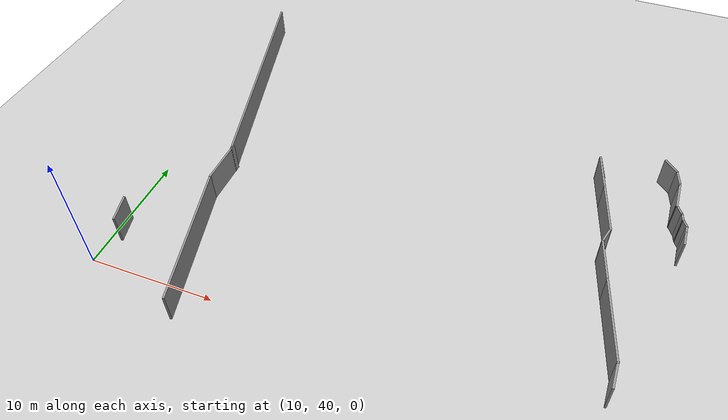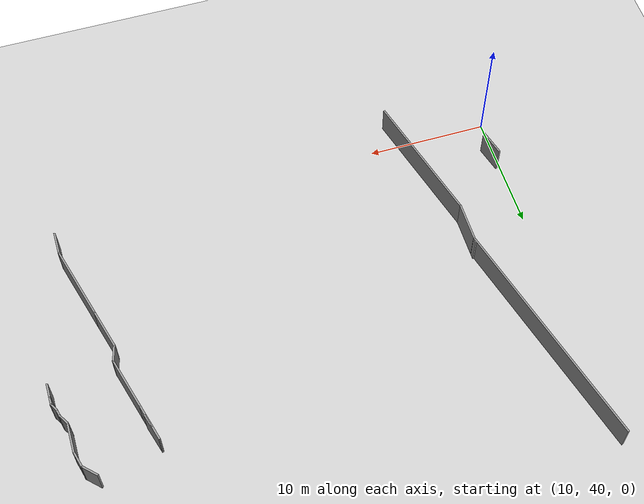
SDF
<sdf version="1.7">
 <world name="default">
  <model name="ground_plane">
   <static>1</static>
   <link name="link">
    <collision name="collision">
     <geometry><plane><normal>0 0 1</normal><size>500 500</size></plane></geometry>
     <surface><friction><ode><mu>100</mu><mu2>50</mu2></ode></friction></surface>
    </collision>
    <visual name="visual">
     <cast_shadows>0</cast_shadows>
     <geometry><plane><normal>0 0 1</normal><size>500 500</size></plane></geometry>
     <material>
      <script><uri>file://media/materials/scripts/gazebo.material</uri><name>Gazebo/Grey</name></script>
     </material>
    </visual>
   </link>
  </model>
  <model name="out_door1">
   <pose>25.5832 12.3476 0 0 -0 0</pose>
   <link name="Wall_322">
    <collision name="Wall_322_Collision">
     <geometry><box><size>1.5 0.15 2.5</size></box></geometry>
     <pose>0 0 1.25 0 -0 0</pose>
    </collision>
    <visual name="Wall_322_Visual">
     <pose>0 0 1.25 0 -0 0</pose>
     <geometry><box><size>1.5 0.15 2.5</size></box></geometry>
     <material>
      <script><uri>file://media/materials/scripts/gazebo.material</uri><name>Gazebo/Grey</name></script>
      <ambient>1 1 1 1</ambient>
     </material>
     <meta><layer>0</layer></meta>
    </visual>
    <pose>23.1762 50.1033 0 0 -0 -0.785398</pose>
   </link>
   <link name="Wall_323">
    <collision name="Wall_323_Collision">
     <geometry><box><size>1.5 0.15 2.5</size></box></geometry>
     <pose>0 0 1.25 0 -0 0</pose>
    </collision>
    <visual name="Wall_323_Visual">
     <pose>0 0 1.25 0 -0 0</pose>
     <geometry><box><size>1.5 0.15 2.5</size></box></geometry>
     <material>
      <script><uri>file://media/materials/scripts/gazebo.material</uri><name>Gazebo/Grey</name></script>
      <ambient>1 1 1 1</ambient>
     </material>
     <meta><layer>0</layer></meta>
    </visual>
    <pose>23.8282 48.974 0 0 -0 -1.309</pose>
   </link>
   <link name="Wall_324">
    <collision name="Wall_324_Collision">
     <geometry><box><size>2.5 0.15 2.5</size></box></geometry>
     <pose>0 0 1.25 0 -0 0</pose>
    </collision>
    <visual name="Wall_324_Visual">
     <pose>0 0 1.25 0 -0 0</pose>
     <geometry><box><size>2.5 0.15 2.5</size></box></geometry>
     <material>
      <script><uri>file://media/materials/scripts/gazebo.material</uri><name>Gazebo/Grey</name></script>
      <ambient>1 1 1 1</ambient>
     </material>
     <meta><layer>0</layer></meta>
    </visual>
    <pose>24.0029 47.147 0 0 -0 -1.5708</pose>
   </link>
   <link name="Wall_325">
    <collision name="Wall_325_Collision">
     <geometry><box><size>1 0.15 2.5</size></box></geometry>
     <pose>0 0 1.25 0 -0 0</pose>
    </collision>
    <visual name="Wall_325_Visual">
     <pose>0 0 1.25 0 -0 0</pose>
     <geometry><box><size>1 0.15 2.5</size></box></geometry>
     <material>
      <script><uri>file://media/materials/scripts/gazebo.material</uri><name>Gazebo/Grey</name></script>
      <ambient>1 1 1 1</ambient>
     </material>
     <meta><layer>0</layer></meta>
    </visual>
    <pose>24.2154 45.6039 0 0 -0 -1.0472</pose>
   </link>
   <link name="Wall_326">
    <collision name="Wall_326_Collision">
     <geometry><box><size>0.75 0.15 2.5</size></box></geometry>
     <pose>0 0 1.25 0 -0 0</pose>
    </collision>
    <visual name="Wall_326_Visual">
     <pose>0 0 1.25 0 -0 0</pose>
     <geometry><box><size>0.75 0.15 2.5</size></box></geometry>
     <material>
      <script><uri>file://media/materials/scripts/gazebo.material</uri><name>Gazebo/Grey</name></script>
      <ambient>1 1 1 1</ambient>
     </material>
     <meta><layer>0</layer></meta>
    </visual>
    <pose>24.5055 44.9461 0 0 -0 -1.309</pose>
   </link>
   <link name="Wall_328">
    <collision name="Wall_328_Collision">
     <geometry><box><size>0.75 0.15 2.5</size></box></geometry>
     <pose>0 0 1.25 0 -0 0</pose>
    </collision>
    <visual name="Wall_328_Visual">
     <pose>0 0 1.25 0 -0 0</pose>
     <geometry><box><size>0.75 0.15 2.5</size></box></geometry>
     <material>
      <script><uri>file://media/materials/scripts/gazebo.material</uri><name>Gazebo/Grey</name></script>
      <ambient>1 1 1 1</ambient>
     </material>
     <meta><layer>0</layer></meta>
    </visual>
    <pose>24.7332 44.3965 0 0 -0 -1.0472</pose>
   </link>
   <link name="Wall_329">
    <collision name="Wall_329_Collision">
     <geometry><box><size>0.75 0.15 2.5</size></box></geometry>
     <pose>0 0 1.25 0 -0 0</pose>
    </collision>
    <visual name="Wall_329_Visual">
     <pose>0 0 1.25 0 -0 0</pose>
     <geometry><box><size>0.75 0.15 2.5</size></box></geometry>
     <material>
      <script><uri>file://media/materials/scripts/gazebo.material</uri><name>Gazebo/Grey</name></script>
      <ambient>1 1 1 1</ambient>
     </material>
     <meta><layer>0</layer></meta>
    </visual>
    <pose>24.8832 43.8367 0 0 -0 -1.5708</pose>
   </link>
   <link name="Wall_330">
    <collision name="Wall_330_Collision">
     <geometry><box><size>1.25 0.15 2.5</size></box></geometry>
     <pose>0 0 1.25 0 -0 0</pose>
    </collision>
    <visual name="Wall_330_Visual">
     <pose>0 0 1.25 0 -0 0</pose>
     <geometry><box><size>1.25 0.15 2.5</size></box></geometry>
     <material>
      <script><uri>file://media/materials/scripts/gazebo.material</uri><name>Gazebo/Grey</name></script>
      <ambient>1 1 1 1</ambient>
     </material>
     <meta><layer>0</layer></meta>
    </visual>
    <pose>24.8832 42.9867 0 0 -0 -1.5708</pose>
   </link>
   <link name="Wall_413">
    <collision name="Wall_413_Collision">
     <geometry><box><size>2.25 0.15 2.5</size></box></geometry>
     <pose>0 0 1.25 0 -0 0</pose>
    </collision>
    <visual name="Wall_413_Visual">
     <pose>0 0 1.25 0 -0 0</pose>
     <geometry><box><size>2.25 0.15 2.5</size></box></geometry>
     <material>
      <script><uri>file://media/materials/scripts/gazebo.material</uri><name>Gazebo/Grey</name></script>
      <ambient>1 1 1 1</ambient>
     </material>
     <meta><layer>0</layer></meta>
    </visual>
    <pose>-14.9962 31.0842 0 0 -0 1.8326</pose>
   </link>
   <link name="Wall_433">
    <collision name="Wall_433_Collision">
     <geometry><box><size>19.75 0.15 2.5</size></box></geometry>
     <pose>0 0 1.25 0 -0 0</pose>
    </collision>
    <visual name="Wall_433_Visual">
     <pose>0 0 1.25 0 -0 0</pose>
     <geometry><box><size>19.75 0.15 2.5</size></box></geometry>
     <material>
      <script><uri>file://media/materials/scripts/gazebo.material</uri><name>Gazebo/Grey</name></script>
      <ambient>1 1 1 1</ambient>
     </material>
     <meta><layer>0</layer></meta>
    </visual>
    <pose>-12.8653 49.0741 0 0 -0 -1.309</pose>
   </link>
   <link name="Wall_436">
    <collision name="Wall_436_Collision">
     <geometry><box><size>3.75 0.15 2.5</size></box></geometry>
     <pose>0 0 1.25 0 -0 0</pose>
    </collision>
    <visual name="Wall_436_Visual">
     <pose>0 0 1.25 0 -0 0</pose>
     <geometry><box><size>3.75 0.15 2.5</size></box></geometry>
     <material>
      <script><uri>file://media/materials/scripts/gazebo.material</uri><name>Gazebo/Grey</name></script>
      <ambient>1 1 1 1</ambient>
     </material>
     <meta><layer>0</layer></meta>
    </visual>
    <pose>-10.3224 38.1453 0 0 -0 -1.5708</pose>
   </link>
   <link name="Wall_437">
    <collision name="Wall_437_Collision">
     <geometry><box><size>11.5 0.15 2.5</size></box></geometry>
     <pose>0 0 1.25 0 -0 0</pose>
    </collision>
    <visual name="Wall_437_Visual">
     <pose>0 0 1.25 0 -0 0</pose>
     <geometry><box><size>11.5 0.15 2.5</size></box></geometry>
     <material>
      <script><uri>file://media/materials/scripts/gazebo.material</uri><name>Gazebo/Grey</name></script>
      <ambient>1 1 1 1</ambient>
     </material>
     <meta><layer>0</layer></meta>
    </visual>
    <pose>-8.85358 30.8637 0 0 -0 -1.309</pose>
   </link>
   <link name="Wall_458">
    <collision name="Wall_458_Collision">
     <geometry><box><size>2.34536 0.15 2.5</size></box></geometry>
     <pose>0 0 1.25 0 -0 0</pose>
    </collision>
    <visual name="Wall_458_Visual">
     <pose>0 0 1.25 0 -0 0</pose>
     <geometry><box><size>2.34536 0.15 2.5</size></box></geometry>
     <material>
      <script><uri>file://media/materials/scripts/gazebo.material</uri><name>Gazebo/Grey</name></script>
      <ambient>1 1 1 1</ambient>
     </material>
     <meta><layer>0</layer></meta>
    </visual>
    <pose>18.0795 48.0796 0 0 -0 -1.29007</pose>
   </link>
   <link name="Wall_460">
    <collision name="Wall_460_Collision">
     <geometry><box><size>3.25 0.15 2.5</size></box></geometry>
     <pose>0 0 1.25 0 -0 0</pose>
    </collision>
    <visual name="Wall_460_Visual">
     <pose>0 0 1.25 0 -0 0</pose>
     <geometry><box><size>3.25 0.15 2.5</size></box></geometry>
     <material>
      <script><uri>file://media/materials/scripts/gazebo.material</uri><name>Gazebo/Grey</name></script>
      <ambient>1 1 1 1</ambient>
     </material>
     <meta><layer>0</layer></meta>
    </visual>
    <pose>18.1765 47.6371 0 0 -0 -1.309</pose>
   </link>
   <link name="Wall_461">
    <collision name="Wall_461_Collision">
     <geometry><box><size>4.5 0.15 2.5</size></box></geometry>
     <pose>0 0 1.25 0 -0 0</pose>
    </collision>
    <visual name="Wall_461_Visual">
     <pose>0 0 1.25 0 -0 0</pose>
     <geometry><box><size>4.5 0.15 2.5</size></box></geometry>
     <material>
      <script><uri>file://media/materials/scripts/gazebo.material</uri><name>Gazebo/Grey</name></script>
      <ambient>1 1 1 1</ambient>
     </material>
     <meta><layer>0</layer></meta>
    </visual>
    <pose>19.1406 44.0391 0 0 -0 -1.309</pose>
   </link>
   <link name="Wall_462">
    <collision name="Wall_462_Collision">
     <geometry><box><size>1.5 0.15 2.5</size></box></geometry>
     <pose>0 0 1.25 0 -0 0</pose>
    </collision>
    <visual name="Wall_462_Visual">
     <pose>0 0 1.25 0 -0 0</pose>
     <geometry><box><size>1.5 0.15 2.5</size></box></geometry>
     <material>
      <script><uri>file://media/materials/scripts/gazebo.material</uri><name>Gazebo/Grey</name></script>
      <ambient>1 1 1 1</ambient>
     </material>
     <meta><layer>0</layer></meta>
    </visual>
    <pose>19.5289 41.2862 0 0 -0 -1.8326</pose>
   </link>
   <link name="Wall_463">
    <collision name="Wall_463_Collision">
     <geometry><box><size>3.5 0.15 2.5</size></box></geometry>
     <pose>0 0 1.25 0 -0 0</pose>
    </collision>
    <visual name="Wall_463_Visual">
     <pose>0 0 1.25 0 -0 0</pose>
     <geometry><box><size>3.5 0.15 2.5</size></box></geometry>
     <material>
      <script><uri>file://media/materials/scripts/gazebo.material</uri><name>Gazebo/Grey</name></script>
      <ambient>1 1 1 1</ambient>
     </material>
     <meta><layer>0</layer></meta>
    </visual>
    <pose>19.7877 39.0163 0 0 -0 -1.309</pose>
   </link>
   <link name="Wall_464">
    <collision name="Wall_464_Collision">
     <geometry><box><size>6.5 0.15 2.5</size></box></geometry>
     <pose>0 0 1.25 0 -0 0</pose>
    </collision>
    <visual name="Wall_464_Visual">
     <pose>0 0 1.25 0 -0 0</pose>
     <geometry><box><size>6.5 0.15 2.5</size></box></geometry>
     <material>
      <script><uri>file://media/materials/scripts/gazebo.material</uri><name>Gazebo/Grey</name></script>
      <ambient>1 1 1 1</ambient>
     </material>
     <meta><layer>0</layer></meta>
    </visual>
    <pose>21.043 34.3315 0 0 -0 -1.309</pose>
   </link>
   <link name="Wall_465">
    <collision name="Wall_465_Collision">
     <geometry><box><size>2 0.15 2.5</size></box></geometry>
     <pose>0 0 1.25 0 -0 0</pose>
    </collision>
    <visual name="Wall_465_Visual">
     <pose>0 0 1.25 0 -0 0</pose>
     <geometry><box><size>2 0.15 2.5</size></box></geometry>
     <material>
      <script><uri>file://media/materials/scripts/gazebo.material</uri><name>Gazebo/Grey</name></script>
      <ambient>1 1 1 1</ambient>
     </material>
     <meta><layer>0</layer></meta>
    </visual>
    <pose>21.8647 30.3397 0 0 -0 -1.5708</pose>
   </link>
   <static>1</static>
  </model>
 </world>
</sdf>
